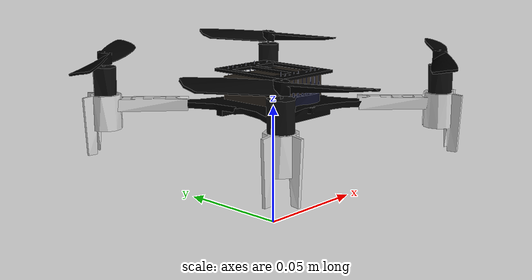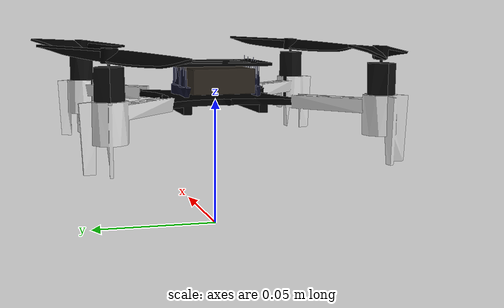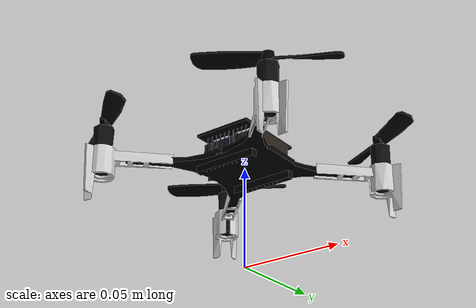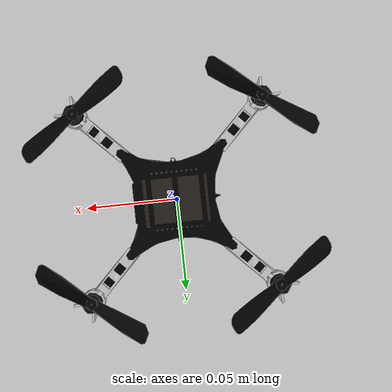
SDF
<?xml version="1.0" ?>
<sdf version="1.9">
  <model name="crazyflie">
    <pose>0 0 0.05 0 0 0</pose>

    <!-- =====================  BODY  ===================== -->
    <link name="crazyflie/body">
      <inertial>
        <pose>0 0 0 0 0 0</pose>
        <mass>0.1</mass>
        <inertia>
          <ixx>0.000066288</ixx>
          <ixy>0.0</ixy>
          <ixz>0.0</ixz>
          <iyy>0.000066624</iyy>
          <iyz>0.0</iyz>
          <izz>0.000117048</izz>
        </inertia>
      </inertial>
      <collision name="crazyflie/body_collision">
        <pose>0 0 0 0 0 0</pose>
        <geometry>
          <box>
            <size>0.10 0.10 0.03</size>
          </box>
        </geometry>
      </collision>
      <visual name="crazyflie/body_visual">
        <pose>0 0 0 0 0 0</pose>
        <geometry>
          <mesh>
            <scale>1 1 1</scale>
            <uri>model://crazyflie/meshes/crazyflie_body.dae</uri>
          </mesh>
        </geometry>
      </visual>
    </link>

    <!-- =====================  IMU LINK + SENSOR  ===================== -->
    <link name="crazyflie/imu_link">
      <pose>0 0 0 0 0 0</pose>
      <inertial>
        <mass>0.001</mass>
        <inertia>
          <ixx>1e-7</ixx>
          <iyy>1e-7</iyy>
          <izz>1e-7</izz>
          <ixy>0</ixy><ixz>0</ixz><iyz>0</iyz>
        </inertia>
      </inertial>
      <sensor name="imu_sensor" type="imu">
        <always_on>1</always_on>
        <update_rate>1000</update_rate>
      </sensor>
    </link>
    <joint name="crazyflie/imu_joint" type="fixed">
      <parent>crazyflie/body</parent>
      <child>crazyflie/imu_link</child>
    </joint>

    <link name="crazyflie/m1_prop">
      <pose>0.048 -0.048 0.021 0 0 0</pose>
      <inertial>
        <pose>0 0 0 0 0 0</pose>
        <mass>0.0008</mass>
        <inertia>
          <ixx>2e-9</ixx>
          <iyy>1.67e-7</iyy>
          <izz>1.68e-7</izz>
          <ixy>0</ixy><ixz>0</ixz><iyz>0</iyz>
        </inertia>
      </inertial>
      <visual name="crazyflie/m1_visual">
        <pose>0 0 0 0 0 0</pose>
        <geometry>
          <mesh>
            <scale>1 1 1</scale>
            <uri>model://crazyflie/meshes/crazyflie_ccw_propeller.dae</uri>
          </mesh>
        </geometry>
      </visual>
    </link>

    <link name="crazyflie/m2_prop">
      <pose>-0.048 -0.048 0.021 0 0 0</pose>
      <inertial>
        <pose>0 0 0 0 0 0</pose>
        <mass>0.0008</mass>
        <inertia>
          <ixx>2e-9</ixx>
          <iyy>1.67e-7</iyy>
          <izz>1.68e-7</izz>
          <ixy>0</ixy><ixz>0</ixz><iyz>0</iyz>
        </inertia>
      </inertial>
      <visual name="crazyflie/m2_visual">
        <pose>0 0 0 0 0 0</pose>
        <geometry>
          <mesh>
            <scale>1 1 1</scale>
            <uri>model://crazyflie/meshes/crazyflie_cw_propeller.dae</uri>
          </mesh>
        </geometry>
      </visual>
    </link>

    <link name="crazyflie/m3_prop">
      <pose>-0.048 0.048 0.021 0 0 0</pose>
      <inertial>
        <pose>0 0 0 0 0 0</pose>
        <mass>0.0008</mass>
        <inertia>
          <ixx>2e-9</ixx>
          <iyy>1.67e-7</iyy>
          <izz>1.68e-7</izz>
          <ixy>0</ixy><ixz>0</ixz><iyz>0</iyz>
        </inertia>
      </inertial>
      <visual name="crazyflie/m3_visual">
        <pose>0 0 0 0 0 0</pose>
        <geometry>
          <mesh>
            <scale>1 1 1</scale>
            <uri>model://crazyflie/meshes/crazyflie_ccw_propeller.dae</uri>
          </mesh>
        </geometry>
      </visual>
    </link>

    <link name="crazyflie/m4_prop">
      <pose>0.048 0.048 0.021 0 0 0</pose>
      <inertial>
        <pose>0 0 0 0 0 0</pose>
        <mass>0.0008</mass>
        <inertia>
          <ixx>2e-9</ixx>
          <iyy>1.67e-7</iyy>
          <izz>1.68e-7</izz>
          <ixy>0</ixy><ixz>0</ixz><iyz>0</iyz>
        </inertia>
      </inertial>
      <visual name="crazyflie/m4_visual">
        <pose>0 0 0 0 0 0</pose>
        <geometry>
          <mesh>
            <scale>1 1 1</scale>
            <uri>model://crazyflie/meshes/crazyflie_cw_propeller.dae</uri>
          </mesh>
        </geometry>
      </visual>
    </link>

    <!-- =====================  MOTOR JOINTS  ===================== -->
    <joint name="crazyflie/m1_joint" type="revolute">
      <parent>crazyflie/body</parent>
      <child>crazyflie/m1_prop</child>
      <axis>
        <xyz>0 0 1</xyz>
        <limit>
          <lower>-1e16</lower>
          <upper>1e16</upper>
        </limit>
        <dynamics>
          <damping>0.0001</damping>
          <friction>0</friction>
        </dynamics>
      </axis>
    </joint>

    <joint name="crazyflie/m2_joint" type="revolute">
      <parent>crazyflie/body</parent>
      <child>crazyflie/m2_prop</child>
      <axis>
        <xyz>0 0 1</xyz>
        <limit>
          <lower>-1e16</lower>
          <upper>1e16</upper>
        </limit>
        <dynamics>
          <damping>0.0001</damping>
          <friction>0</friction>
        </dynamics>
      </axis>
    </joint>

    <joint name="crazyflie/m3_joint" type="revolute">
      <parent>crazyflie/body</parent>
      <child>crazyflie/m3_prop</child>
      <axis>
        <xyz>0 0 1</xyz>
        <limit>
          <lower>-1e16</lower>
          <upper>1e16</upper>
        </limit>
        <dynamics>
          <damping>0.0001</damping>
          <friction>0</friction>
        </dynamics>
      </axis>
    </joint>

    <joint name="crazyflie/m4_joint" type="revolute">
      <parent>crazyflie/body</parent>
      <child>crazyflie/m4_prop</child>
      <axis>
        <xyz>0 0 1</xyz>
        <limit>
          <lower>-1e16</lower>
          <upper>1e16</upper>
        </limit>
        <dynamics>
          <damping>0.0001</damping>
          <friction>0</friction>
        </dynamics>
      </axis>
    </joint>

    <!-- =====================  PLUGINS  ===================== -->
    <plugin filename="gz-sim-joint-state-publisher-system"
            name="gz::sim::systems::JointStatePublisher">
    </plugin>

    <!-- Apply-joint-force lets the ArduPilotPlugin drive each rotor joint.
         One per motor. -->
    <plugin filename="gz-sim-apply-joint-force-system"
            name="gz::sim::systems::ApplyJointForce">
      <joint_name>crazyflie/m1_joint</joint_name>
    </plugin>
    <plugin filename="gz-sim-apply-joint-force-system"
            name="gz::sim::systems::ApplyJointForce">
      <joint_name>crazyflie/m2_joint</joint_name>
    </plugin>
    <plugin filename="gz-sim-apply-joint-force-system"
            name="gz::sim::systems::ApplyJointForce">
      <joint_name>crazyflie/m3_joint</joint_name>
    </plugin>
    <plugin filename="gz-sim-apply-joint-force-system"
            name="gz::sim::systems::ApplyJointForce">
      <joint_name>crazyflie/m4_joint</joint_name>
    </plugin>

    <!-- ===== m1 (CCW) ===== -->
    <plugin filename="gz-sim-lift-drag-system" name="gz::sim::systems::LiftDrag">
      <a0>0.3</a0><alpha_stall>1.4</alpha_stall>
      <cla>4.2500</cla><cda>0.10</cda><cma>0.0</cma>
      <cla_stall>-0.025</cla_stall><cda_stall>0.0</cda_stall><cma_stall>0.0</cma_stall>
      <area>4e-4</area><air_density>1.2041</air_density>
      <cp>0.012 0 0</cp>
      <forward>0 1 0</forward>
      <upward>0 0 1</upward>
      <link_name>crazyflie/m1_prop</link_name>
    </plugin>
    <plugin filename="gz-sim-lift-drag-system" name="gz::sim::systems::LiftDrag">
      <a0>0.3</a0><alpha_stall>1.4</alpha_stall>
      <cla>4.2500</cla><cda>0.10</cda><cma>0.0</cma>
      <cla_stall>-0.025</cla_stall><cda_stall>0.0</cda_stall><cma_stall>0.0</cma_stall>
      <area>4e-4</area><air_density>1.2041</air_density>
      <cp>-0.012 0 0</cp>
      <forward>0 -1 0</forward>
      <upward>0 0 1</upward>
      <link_name>crazyflie/m1_prop</link_name>
    </plugin>

    <!-- ===== m2 (CW) ===== -->
    <plugin filename="gz-sim-lift-drag-system" name="gz::sim::systems::LiftDrag">
      <a0>0.3</a0><alpha_stall>1.4</alpha_stall>
      <cla>4.2500</cla><cda>0.10</cda><cma>0.0</cma>
      <cla_stall>-0.025</cla_stall><cda_stall>0.0</cda_stall><cma_stall>0.0</cma_stall>
      <area>4e-4</area><air_density>1.2041</air_density>
      <cp>0.012 0 0</cp>
      <forward>0 -1 0</forward>
      <upward>0 0 1</upward>
      <link_name>crazyflie/m2_prop</link_name>
    </plugin>
    <plugin filename="gz-sim-lift-drag-system" name="gz::sim::systems::LiftDrag">
      <a0>0.3</a0><alpha_stall>1.4</alpha_stall>
      <cla>4.2500</cla><cda>0.10</cda><cma>0.0</cma>
      <cla_stall>-0.025</cla_stall><cda_stall>0.0</cda_stall><cma_stall>0.0</cma_stall>
      <area>4e-4</area><air_density>1.2041</air_density>
      <cp>-0.012 0 0</cp>
      <forward>0 1 0</forward>
      <upward>0 0 1</upward>
      <link_name>crazyflie/m2_prop</link_name>
    </plugin>

    <!-- ===== m3 (CCW) ===== -->
    <plugin filename="gz-sim-lift-drag-system" name="gz::sim::systems::LiftDrag">
      <a0>0.3</a0><alpha_stall>1.4</alpha_stall>
      <cla>4.2500</cla><cda>0.10</cda><cma>0.0</cma>
      <cla_stall>-0.025</cla_stall><cda_stall>0.0</cda_stall><cma_stall>0.0</cma_stall>
      <area>4e-4</area><air_density>1.2041</air_density>
      <cp>0.012 0 0</cp>
      <forward>0 1 0</forward>
      <upward>0 0 1</upward>
      <link_name>crazyflie/m3_prop</link_name>
    </plugin>
    <plugin filename="gz-sim-lift-drag-system" name="gz::sim::systems::LiftDrag">
      <a0>0.3</a0><alpha_stall>1.4</alpha_stall>
      <cla>4.2500</cla><cda>0.10</cda><cma>0.0</cma>
      <cla_stall>-0.025</cla_stall><cda_stall>0.0</cda_stall><cma_stall>0.0</cma_stall>
      <area>4e-4</area><air_density>1.2041</air_density>
      <cp>-0.012 0 0</cp>
      <forward>0 -1 0</forward>
      <upward>0 0 1</upward>
      <link_name>crazyflie/m3_prop</link_name>
    </plugin>

    <!-- ===== m4 (CW) ===== -->
    <plugin filename="gz-sim-lift-drag-system" name="gz::sim::systems::LiftDrag">
      <a0>0.3</a0><alpha_stall>1.4</alpha_stall>
      <cla>4.2500</cla><cda>0.10</cda><cma>0.0</cma>
      <cla_stall>-0.025</cla_stall><cda_stall>0.0</cda_stall><cma_stall>0.0</cma_stall>
      <area>4e-4</area><air_density>1.2041</air_density>
      <cp>0.012 0 0</cp>
      <forward>0 -1 0</forward>
      <upward>0 0 1</upward>
      <link_name>crazyflie/m4_prop</link_name>
    </plugin>
    <plugin filename="gz-sim-lift-drag-system" name="gz::sim::systems::LiftDrag">
      <a0>0.3</a0><alpha_stall>1.4</alpha_stall>
      <cla>4.2500</cla><cda>0.10</cda><cma>0.0</cma>
      <cla_stall>-0.025</cla_stall><cda_stall>0.0</cda_stall><cma_stall>0.0</cma_stall>
      <area>4e-4</area><air_density>1.2041</air_density>
      <cp>-0.012 0 0</cp>
      <forward>0 1 0</forward>
      <upward>0 0 1</upward>
      <link_name>crazyflie/m4_prop</link_name>
    </plugin>

    <plugin name="ArduPilotPlugin" filename="ArduPilotPlugin">
      <fdm_addr>127.0.0.1</fdm_addr>
      <fdm_port_in>9002</fdm_port_in>
      <connectionTimeoutMaxCount>5</connectionTimeoutMaxCount>
      <lock_step>1</lock_step>
      <have_32_channels>0</have_32_channels>

      <modelXYZToAirplaneXForwardZDown degrees="true">0 0 0 180 0 0</modelXYZToAirplaneXForwardZDown>
      <gazeboXYZToNED degrees="true">0 0 0 180 0 90</gazeboXYZToNED>

      <imuName>crazyflie/imu_link::imu_sensor</imuName>

      <control channel="0">
        <jointName>crazyflie/m1_joint</jointName>
        <useForce>1</useForce>
        <multiplier>2618</multiplier>
        <offset>0</offset>
        <servo_min>1000</servo_min>
        <servo_max>1900</servo_max>
        <type>VELOCITY</type>
        <p_gain>0.02</p_gain>
        <i_gain>0</i_gain>
        <d_gain>0</d_gain>
        <i_max>0</i_max><i_min>0</i_min>
        <cmd_max>0.5</cmd_max>
        <cmd_min>-0.5</cmd_min>
        <controlVelocitySlowdownSim>0</controlVelocitySlowdownSim>
      </control>

      <control channel="1">
        <jointName>crazyflie/m3_joint</jointName>
        <useForce>1</useForce>
        <multiplier>2618</multiplier>
        <offset>0</offset>
        <servo_min>1000</servo_min>
        <servo_max>1900</servo_max>
        <type>VELOCITY</type>
        <p_gain>0.02</p_gain>
        <i_gain>0</i_gain>
        <d_gain>0</d_gain>
        <i_max>0</i_max><i_min>0</i_min>
        <cmd_max>0.5</cmd_max>
        <cmd_min>-0.5</cmd_min>
        <controlVelocitySlowdownSim>0</controlVelocitySlowdownSim>
      </control>

      <control channel="2">
        <jointName>crazyflie/m4_joint</jointName>
        <useForce>1</useForce>
        <multiplier>-2618</multiplier>
        <offset>0</offset>
        <servo_min>1000</servo_min>
        <servo_max>1900</servo_max>
        <type>VELOCITY</type>
        <p_gain>0.02</p_gain>
        <i_gain>0</i_gain>
        <d_gain>0</d_gain>
        <i_max>0</i_max><i_min>0</i_min>
        <cmd_max>0.5</cmd_max>
        <cmd_min>-0.5</cmd_min>
        <controlVelocitySlowdownSim>0</controlVelocitySlowdownSim>
      </control>

      <control channel="3">
        <jointName>crazyflie/m2_joint</jointName>
        <useForce>1</useForce>
        <multiplier>-2618</multiplier>
        <offset>0</offset>
        <servo_min>1000</servo_min>
        <servo_max>1900</servo_max>
        <type>VELOCITY</type>
        <p_gain>0.02</p_gain>
        <i_gain>0</i_gain>
        <d_gain>0</d_gain>
        <i_max>0</i_max><i_min>0</i_min>
        <cmd_max>0.5</cmd_max>
        <cmd_min>-0.5</cmd_min>
        <controlVelocitySlowdownSim>0</controlVelocitySlowdownSim>
      </control>

    </plugin>

  </model>
</sdf>
